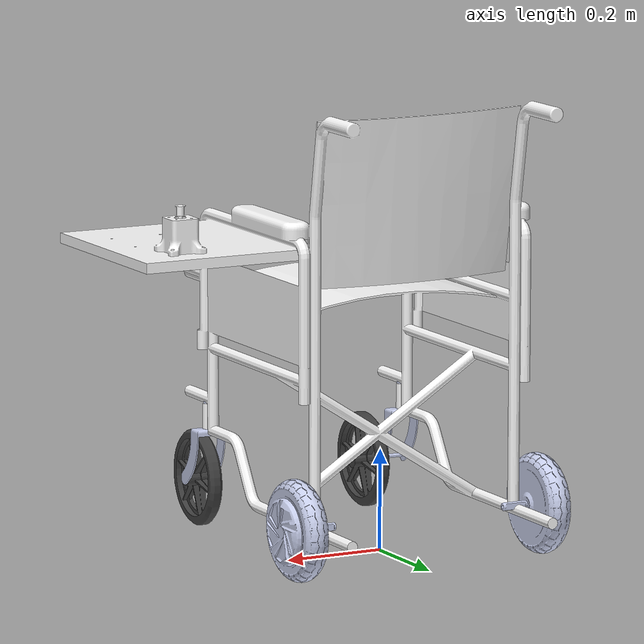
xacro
<?xml version="1.0" encoding="utf-8"?>
<robot name="wheel_robot" xmlns:xacro="http://www.ros.org/wiki/xacro">

  <link name="base_link">
    <inertial>
      <origin xyz="0.034703 -0.030762 0.4133" rpy="0 0 0" />
      <mass value="29.169" />
      <inertia ixx="1.8151" ixy="6.2642E-05" ixz="-3.4057E-05" iyy="2.0404" iyz="-0.15331" izz="1.8019" />
    </inertial>
    <visual>
      <origin xyz="0 0 0" rpy="0 0 0" />
      <geometry>
        <mesh filename="package://my_robot_description/meshes/base_link.STL" />
      </geometry>
      <material name="">
        <color rgba="1 1 1 1" />
      </material>
    </visual>
    <collision>
      <origin xyz="0 0 0" rpy="0 0 0" />
      <geometry>
        <mesh filename="package://my_robot_description/meshes/base_link.STL" />
      </geometry>
    </collision>
  </link>

  <link name="rb_link">
    <inertial>
      <origin xyz="4.8728E-06 0.03315 -2.4291E-12" rpy="0 0 0" />
      <mass value="1.6462" />
      <inertia ixx="0.0038177" ixy="-4.488E-07" ixz="3.5076E-10" iyy="0.0068489" iyz="-1.6695E-14" izz="0.0038176" />
    </inertial>
    <visual>
      <origin xyz="0 0 0" rpy="0 0 0" />
      <geometry>
        <mesh filename="package://my_robot_description/meshes/rb_link.STL" />
      </geometry>
      <material name="">
        <color rgba="0.79608 0.82353 0.93725 1" />
      </material>
    </visual>
    <collision>
      <origin xyz="0 0.0354 0" rpy="1.5708 0 0" />
      <geometry>
        <cylinder radius="0.0983" length="0.0306" />
      </geometry>
    </collision>
  </link>

  <joint name="rb_joint" type="continuous">
    <origin xyz="-0.29763 0.15869 0.098" rpy="0 0 -1.5708" />
    <parent link="base_link" />
    <child link="rb_link" />
    <axis xyz="0 1 0" />
  </joint>

  <link name="lb_link">
    <inertial>
      <origin xyz="4.8728E-06 -0.03315 2.4291E-12" rpy="0 0 0" />
      <mass value="1.6462" />
      <inertia ixx="0.0038177" ixy="4.488E-07" ixz="-3.5076E-10" iyy="0.0068489" iyz="-1.6694E-14" izz="0.0038176" />
    </inertial>
    <visual>
      <origin xyz="0 0 0" rpy="0 0 0" />
      <geometry>
        <mesh filename="package://my_robot_description/meshes/lb_link.STL" />
      </geometry>
      <material name="">
        <color rgba="0.79608 0.82353 0.93725 1" />
      </material>
    </visual>
    <collision>
      <origin xyz="0 -0.0354 0" rpy="1.5708 0 0" />
      <geometry>
        <cylinder radius="0.0983" length="0.0306" />
      </geometry>
    </collision>
  </link>

  <joint name="lb_joint" type="continuous">
    <origin xyz="0.29763 0.15869 0.098" rpy="0 0 -1.5708" />
    <parent link="base_link" />
    <child link="lb_link" />
    <axis xyz="0 1 0" />
  </joint>

  <link name="rcaster_link">
    <inertial>
      <origin xyz="0.0084911 -6.2993E-08 -0.020801" rpy="0 0 0" />
      <mass value="0.066356" />
      <inertia ixx="0.00015145" ixy="-3.8993E-11" ixz="3.0557E-05" iyy="0.00014025" iyz="-4.9722E-11" izz="4.1434E-05" />
    </inertial>
    <visual>
      <origin xyz="0 0 0" rpy="0 0 0" />
      <geometry>
        <mesh filename="package://my_robot_description/meshes/rcaster_link.STL" />
      </geometry>
      <material name="">
        <color rgba="0.79216 0.81961 0.93333 1" />
      </material>
    </visual>
    <collision>
      <origin xyz="0 0 0" rpy="0 0 0" />
      <geometry>
        <mesh filename="package://my_robot_description/meshes/rcaster_link.STL" />
      </geometry>
    </collision>
  </link>

  <joint name="rcaster_joint" type="continuous">
    <origin xyz="-0.2159 -0.31274 0.2032" rpy="0 0 -1.6081" />
    <parent link="base_link" />
    <child link="rcaster_link" />
    <axis xyz="0 0 1" />
    <dynamics damping="0.3" friction="0.0" />
  </joint>

  <!-- The exported rcaster_wheel data (mesh, axis, inertia) was corrupted mid-swivel;
       the right wheel is the same physical part as the left, so reuse the clean left-wheel data. -->
  <link name="rcaster_wheel_link">
    <inertial>
      <origin xyz="0 -0.030162 0" rpy="0 0 0" />
      <mass value="0.29095" />
      <inertia ixx="0.00088006" ixy="5.1838E-19" ixz="3.4931E-21" iyy="0.001718" iyz="-4.8105E-20" izz="0.00088006" />
    </inertial>
    <visual>
      <origin xyz="0 0 0" rpy="0 0 0" />
      <geometry>
        <mesh filename="package://my_robot_description/meshes/rcaster_wheel_link.STL" />
      </geometry>
      <material name="">
        <color rgba="0.25098 0.25098 0.25098 1" />
      </material>
    </visual>
    <collision>
      <origin xyz="0 -0.030162 0" rpy="1.5708 0 0" />
      <geometry>
        <cylinder radius="0.09525" length="0.0539" />
      </geometry>
    </collision>
  </link>

  <joint name="rcaster_wheel_joint" type="continuous">
    <origin xyz="0.0508 0.030163 -0.10795" rpy="0 0 0" />
    <parent link="rcaster_link" />
    <child link="rcaster_wheel_link" />
    <axis xyz="0 1 0" />
    <dynamics damping="0.01" friction="0.0" />
  </joint>

  <link name="lcaster_link">
    <inertial>
      <origin xyz="0.0084911 6.9542E-08 -0.020801" rpy="0 0 0" />
      <mass value="0.066356" />
      <inertia ixx="0.00015145" ixy="-3.8993E-11" ixz="3.0557E-05" iyy="0.00014025" iyz="-4.9722E-11" izz="4.1434E-05" />
    </inertial>
    <visual>
      <origin xyz="0 0 0" rpy="0 0 0" />
      <geometry>
        <mesh filename="package://my_robot_description/meshes/lcaster_link.STL" />
      </geometry>
      <material name="">
        <color rgba="0.79216 0.81961 0.93333 1" />
      </material>
    </visual>
    <collision>
      <origin xyz="0 0 0" rpy="0 0 0" />
      <geometry>
        <mesh filename="package://my_robot_description/meshes/lcaster_link.STL" />
      </geometry>
    </collision>
  </link>

  <joint name="lcaster_joint" type="continuous">
    <origin xyz="0.2159 -0.31274 0.2032" rpy="0 0 -1.6081" />
    <parent link="base_link" />
    <child link="lcaster_link" />
    <axis xyz="0 0 -1" />
    <dynamics damping="0.3" friction="0.0" />
  </joint>

  <link name="lcaster_wheel_link">
    <inertial>
      <origin xyz="1.4572E-16 -0.030162 -5.5511E-17" rpy="0 0 0" />
      <mass value="0.29095" />
      <inertia ixx="0.00088006" ixy="5.1838E-19" ixz="3.4931E-21" iyy="0.001718" iyz="-4.8105E-20" izz="0.00088006" />
    </inertial>
    <visual>
      <origin xyz="0 0 0" rpy="0 0 0" />
      <geometry>
        <mesh filename="package://my_robot_description/meshes/lcaster_wheel_link.STL" />
      </geometry>
      <material name="">
        <color rgba="0.25098 0.25098 0.25098 1" />
      </material>
    </visual>
    <collision>
      <origin xyz="0 -0.030162 0" rpy="1.5708 0 0" />
      <geometry>
        <cylinder radius="0.09525" length="0.0539" />
      </geometry>
    </collision>
  </link>

  <joint name="lcaster_wheel_joint" type="continuous">
    <origin xyz="0.0508 0.030163 -0.10795" rpy="0 0 0" />
    <parent link="lcaster_link" />
    <child link="lcaster_wheel_link" />
    <axis xyz="0 1 0" />
    <dynamics damping="0.01" friction="0.0" />
  </joint>

</robot>
